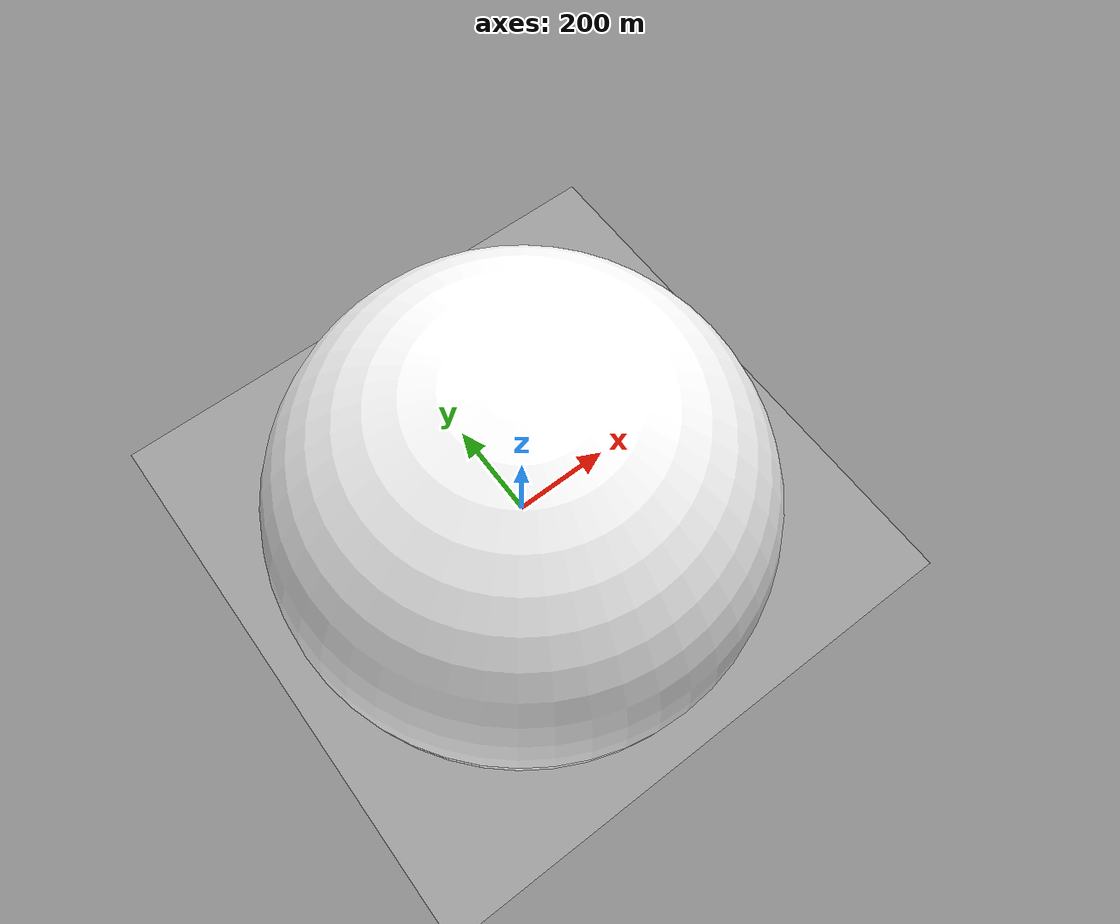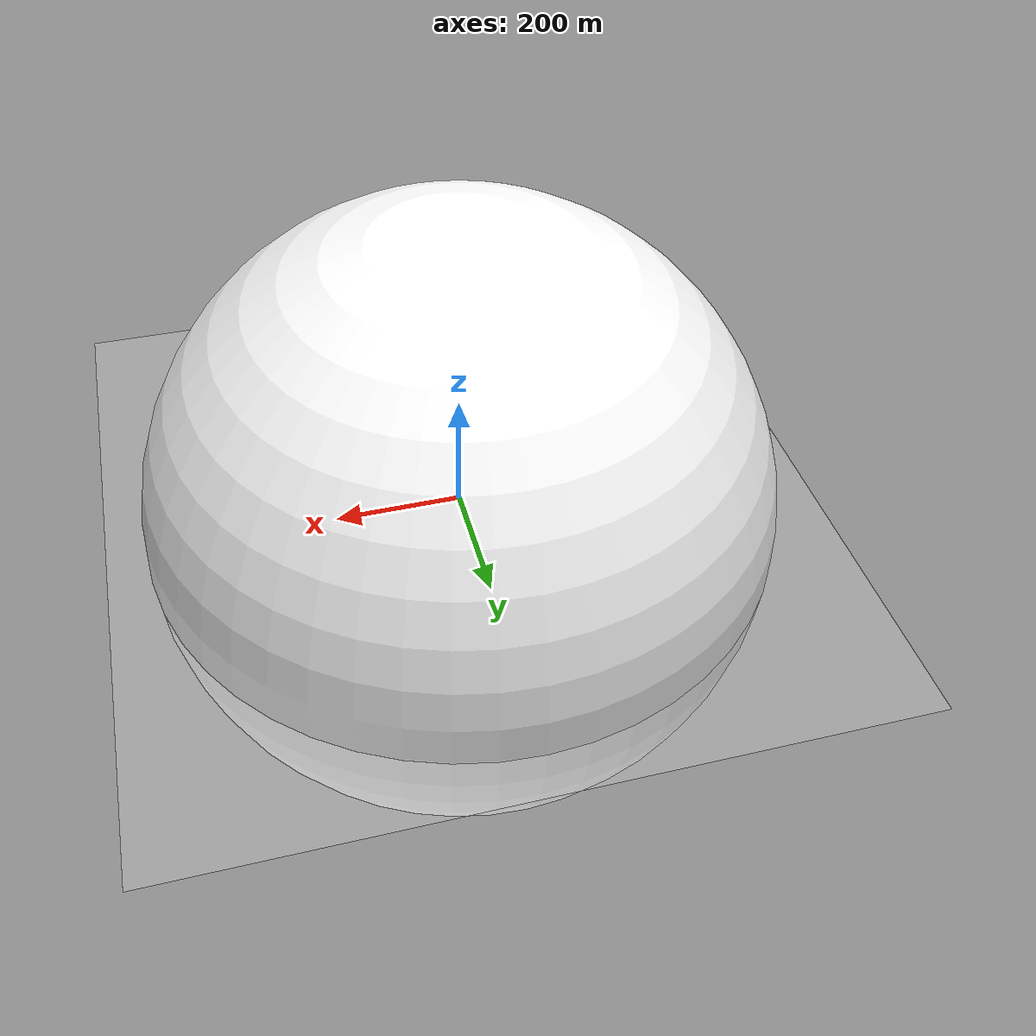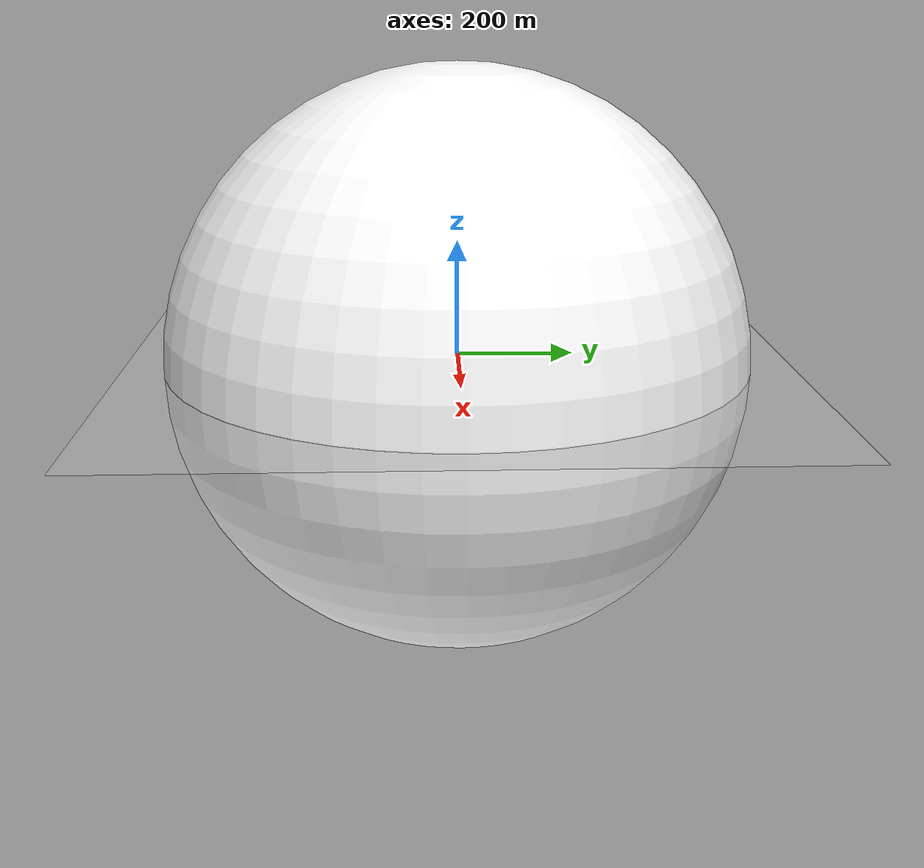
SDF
<?xml version="1.0"?>
<sdf version="1.8">
  <world name="laberinto_world">

    <plugin filename="libignition-gazebo-physics-system.so"
      name="ignition::gazebo::systems::Physics"></plugin>
    <plugin filename="libignition-gazebo-scene-broadcaster-system.so"
      name="ignition::gazebo::systems::SceneBroadcaster"></plugin>
    <plugin filename="libignition-gazebo-user-commands-system.so"
      name="ignition::gazebo::systems::UserCommands"></plugin>
    <plugin filename="libignition-gazebo-sensors-system.so"
      name="ignition::gazebo::systems::Sensors">
      <render_engine>ogre2</render_engine>
    </plugin>
    <!-- IMU system: needed by the JetAuto MPU-6050 sensor (jetauto_sim). Harmless if no IMU. -->
    <plugin filename="libignition-gazebo-imu-system.so"
      name="ignition::gazebo::systems::Imu"></plugin>

    <scene>
      <ambient>0.55 0.55 0.6 1.0</ambient>
      <background>0.85 0.87 0.9 1.0</background>
      <grid>true</grid>
    </scene>

    <gui fullscreen="0">
      <plugin filename="GzScene3D" name="3D View">
        <ignition-gui>
          <title>3D View</title>
          <property type="bool" key="showTitleBar">false</property>
          <property type="string" key="state">docked</property>
        </ignition-gui>
        <engine>ogre2</engine>
        <scene>scene</scene>
        <ambient_light>0.55 0.55 0.6</ambient_light>
        <background_color>0.85 0.87 0.9</background_color>
        <camera_pose>-6 0 5 0 0.5 0</camera_pose>
        <horizontal_fov>0.6912</horizontal_fov>
      </plugin>

      <!-- Plugin para ver el Real Time Factor y Tiempo de Simulación -->
      <plugin filename="WorldStats" name="World stats">
        <ignition-gui>
          <title>World stats</title>
          <property type="bool" key="showTitleBar">false</property>
          <property type="bool" key="resizable">false</property>
          <property type="double" key="height">110</property>
          <property type="double" key="width">290</property>
          <property type="double" key="z">1</property>
          <property type="string" key="state">floating</property>
          <anchors target="3D View">
            <line own="right" target="right"/>
            <line own="bottom" target="bottom"/>
          </anchors>
        </ignition-gui>
        <sim_time>true</sim_time>
        <real_time>true</real_time>
        <real_time_factor>true</real_time_factor>
        <iterations>true</iterations>
      </plugin>

      <!-- Plugin para los botones de Play / Pause / Step -->
      <plugin filename="WorldControl" name="World control">
        <ignition-gui>
          <title>World control</title>
          <property type="bool" key="showTitleBar">false</property>
          <property type="bool" key="resizable">false</property>
          <property type="double" key="height">72</property>
          <property type="double" key="width">121</property>
          <property type="double" key="z">1</property>
          <property type="string" key="state">floating</property>
          <anchors target="3D View">
            <line own="left" target="left"/>
            <line own="bottom" target="bottom"/>
          </anchors>
        </ignition-gui>
        <play_pause>true</play_pause>
        <step>true</step>
        <start_paused>false</start_paused>
      </plugin>
    </gui>

    <physics name="3ms" type="ignored">
      <max_step_size>0.003</max_step_size>
      <real_time_factor>1.0</real_time_factor>
    </physics>

    <light type="directional" name="sun">
      <cast_shadows>true</cast_shadows>
      <pose>0 0 10 0 0 0</pose>
      <diffuse>0.45 0.45 0.45 1</diffuse>
      <specular>0.05 0.05 0.05 1</specular>
      <direction>-0.5 0.1 -0.9</direction>
    </light>

    <light type="directional" name="fill_opposite">
      <cast_shadows>false</cast_shadows>
      <pose>0 0 10 0 0 0</pose>
      <diffuse>0.25 0.25 0.28 1</diffuse>
      <specular>0.0 0.0 0.0 1</specular>
      <direction>0.5 -0.1 -0.7</direction>
    </light>

    <light type="directional" name="fill_side">
      <cast_shadows>false</cast_shadows>
      <pose>0 0 10 0 0 0</pose>
      <diffuse>0.2 0.22 0.25 1</diffuse>
      <specular>0.0 0.0 0.0 1</specular>
      <direction>0.1 0.9 -0.4</direction>
    </light>

    <model name="ground_plane">
      <static>true</static>
      <link name="link">
        <collision name="collision">
          <geometry>
            <plane>
              <normal>0 0 1</normal>
              <size>100 100</size>
            </plane>
          </geometry>
        </collision>
        <visual name="visual">
          <geometry>
            <plane>
              <normal>0 0 1</normal>
              <size>100 100</size>
            </plane>
          </geometry>
          <material>
            <ambient>0.8 0.8 0.8 1</ambient>
            <diffuse>0.8 0.8 0.8 1</diffuse>
          </material>
        </visual>
      </link>
    </model>

    <!-- Props de dron (dronCamara) y marcadores/cubo aruco eliminados:
         no se usan en las tareas de KF + mapa de ocupacion. -->

    <include>
      <uri>model://skydome</uri>
      <pose>0 0 0 0 0 0</pose>
    </include>

    <include>
      <uri>model://laberinto_real</uri>
      <pose>-2.294 2.294 0 1.5708 0 0</pose>
    </include>

  </world>
</sdf>

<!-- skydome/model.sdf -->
<sdf version="1.6">
  <model name="skydome">
    <static>true</static>
    <link name="link">
      <visual name="visual">
        <cast_shadows>false</cast_shadows>
        <geometry>
          <mesh>
            <uri>model://skydome/meshes/skydome.obj</uri>
          </mesh>
        </geometry>
        <material>
          <ambient>1 1 1 1</ambient>
          <diffuse>1 1 1 1</diffuse>
          <specular>0 0 0 1</specular>
          <pbr>
            <metal>
              <albedo_map>model://skydome/meshes/hangar_equirect.png</albedo_map>
              <emissive_map>model://skydome/meshes/hangar_equirect.png</emissive_map>
              <metalness>0.0</metalness>
              <roughness>1.0</roughness>
            </metal>
          </pbr>
        </material>
      </visual>
    </link>
  </model>
</sdf>

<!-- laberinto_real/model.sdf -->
<sdf version="1.6">
  <model name="laberinto_real">
    <static>true</static>

    <pose>0 0 0 0 0 1.5708</pose>

    <link name="link">

      <visual name="visual_piso">
        <geometry>
          <mesh>
            <uri>model://laberinto_real/meshes/piso.stl</uri>
            <scale>0.001 0.001 0.001</scale>
          </mesh>
        </geometry>
        <material>
          <ambient>0.06 0.06 0.07 1</ambient>
          <diffuse>0.08 0.08 0.09 1</diffuse>
          <specular>0.02 0.02 0.02 1</specular>
          <pbr>
            <metal>
              <metalness>0.0</metalness>
              <roughness>0.95</roughness>
            </metal>
          </pbr>
        </material>
      </visual>

      <collision name="colision_piso">
        <geometry>
          <mesh>
            <uri>model://laberinto_real/meshes/piso.stl</uri>
            <scale>0.001 0.001 0.001</scale>
          </mesh>
        </geometry>
      </collision>

      <visual name="visual_paredes">
        <geometry>
          <mesh>
            <uri>model://laberinto_real/meshes/paredes.stl</uri>
            <scale>0.001 0.001 0.001</scale>
          </mesh>
        </geometry>
        <material>
          <ambient>0.45 0.30 0.16 1</ambient>
          <diffuse>0.55 0.38 0.20 1</diffuse>
          <specular>0.05 0.04 0.03 1</specular>
          <pbr>
            <metal>
              <metalness>0.0</metalness>
              <roughness>0.92</roughness>
            </metal>
          </pbr>
        </material>
      </visual>

      <collision name="colision_paredes">
        <geometry>
          <mesh>
            <uri>model://laberinto_real/meshes/paredes.stl</uri>
            <scale>0.001 0.001 0.001</scale>
          </mesh>
        </geometry>
      </collision>

      <visual name="visual_lineas">
        <pose>0 -0.02027 0 0 0 0</pose>
        <geometry>
          <mesh>
            <uri>model://laberinto_real/meshes/lineas.stl</uri>
            <scale>0.001 0.001 0.001</scale>
          </mesh>
        </geometry>
        <material>
          <ambient>0.02 0.20 0.55 1</ambient>
          <diffuse>0.03 0.28 0.70 1</diffuse>
          <specular>0.04 0.04 0.05 1</specular>
          <pbr>
            <metal>
              <metalness>0.0</metalness>
              <roughness>0.88</roughness>
            </metal>
          </pbr>
        </material>
      </visual>

      <visual name="visual_jaula">
        <geometry>
          <mesh>
            <uri>model://laberinto_real/meshes/jaula.stl</uri>
            <scale>0.001 0.001 0.001</scale>
          </mesh>
        </geometry>
        <material>
          <ambient>0.85 0.85 0.85 1</ambient>
          <diffuse>0.85 0.85 0.85 1</diffuse>
        </material>
      </visual>

      <collision name="colision_jaula">
        <geometry>
          <mesh>
            <uri>model://laberinto_real/meshes/jaula.stl</uri>
            <scale>0.001 0.001 0.001</scale>
          </mesh>
        </geometry>
      </collision>

      <visual name="visual_cajasRecientes">
        <geometry>
          <mesh>
            <uri>model://laberinto_real/meshes/cajasRecientes.stl</uri>
            <scale>0.001 0.001 0.001</scale>
          </mesh>
        </geometry>
        <material>
          <ambient>1.0 0.85 0.0 1</ambient>
          <diffuse>1.0 0.85 0.0 1</diffuse>
        </material>
      </visual>

      <collision name="colision_cajasRecientes">
        <geometry>
          <mesh>
            <uri>model://laberinto_real/meshes/cajasRecientes.stl</uri>
            <scale>0.001 0.001 0.001</scale>
          </mesh>
        </geometry>
      </collision>

    </link>
  </model>
</sdf>
